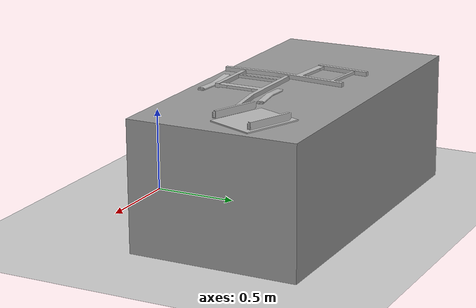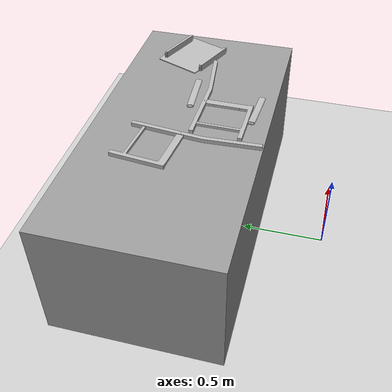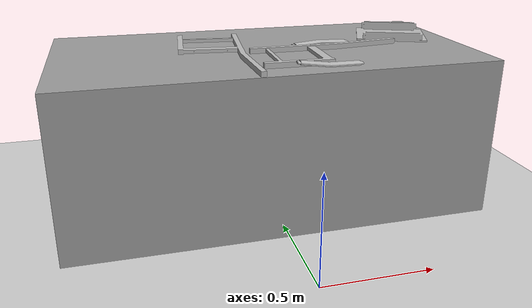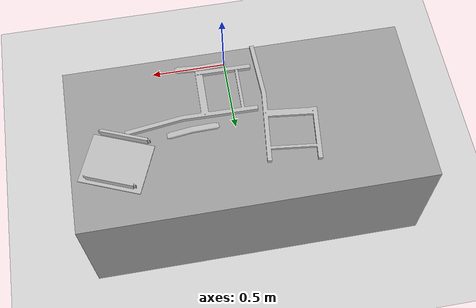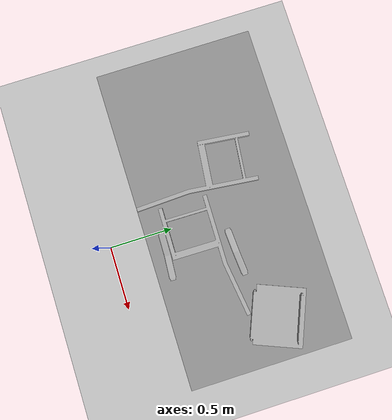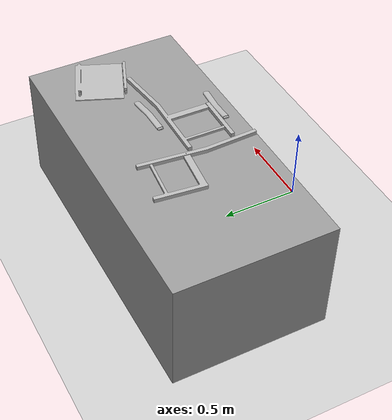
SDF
<sdf version="1.6">
 <world name="default">
  <light name="sun" type="directional">
   <pose>0 0 10 0 -0 0</pose>
   <diffuse>0.8 0.8 0.8 1</diffuse>
   <specular>0.2 0.2 0.2 1</specular>
   <attenuation>
    <range>1000</range>
    <constant>0.9</constant>
    <linear>0.01</linear>
    <quadratic>0.001</quadratic>
   </attenuation>
   <direction>-0.5 0.1 -0.9</direction>
  </light>
  <model name="ground_plane">
   <static>1</static>
   <link name="link">
    <collision name="collision">
     <geometry><plane><normal>0 0 1</normal><size>100 100</size></plane></geometry>
     <surface>
      <contact><collide_bitmask>65535</collide_bitmask></contact>
      <friction><ode><mu>100</mu><mu2>50</mu2></ode></friction>
     </surface>
    </collision>
    <visual name="visual">
     <cast_shadows>0</cast_shadows>
     <geometry><plane><normal>0 0 1</normal><size>100 100</size></plane></geometry>
     <material>
      <script><uri>file://media/materials/scripts/gazebo.material</uri><name>Gazebo/Grey</name></script>
     </material>
    </visual>
   </link>
  </model>
  <gravity>0 0 -9.8</gravity>
  <magnetic_field>6e-06 2.3e-05 -4.2e-05</magnetic_field>
  <atmosphere type="adiabatic"/>
  <physics name="default_physics" default="0" type="ode">
   <max_step_size>0.001</max_step_size>
   <real_time_factor>1</real_time_factor>
   <real_time_update_rate>1000</real_time_update_rate>
  </physics>
  <scene><ambient>0.4 0.4 0.4 1</ambient><background>0.7 0.7 0.7 1</background><shadows>1</shadows></scene>
  <audio><device>default</device></audio>
  <spherical_coordinates>
   <surface_model>EARTH_WGS84</surface_model>
   <latitude_deg>0</latitude_deg>
   <longitude_deg>0</longitude_deg>
   <elevation>0</elevation>
   <heading_deg>0</heading_deg>
  </spherical_coordinates>
  <model name="cafe_box">
   <link name="link_1">
    <inertial>
     <mass>1</mass>
     <inertia>
      <ixx>0.166667</ixx>
      <ixy>0</ixy>
      <ixz>0</ixz>
      <iyy>0.166667</iyy>
      <iyz>0</iyz>
      <izz>0.166667</izz>
     </inertia>
    </inertial>
    <visual name="visual">
     <geometry><box><size>2 1 0.8</size></box></geometry>
     <material>
      <lighting>1</lighting>
      <script><uri>file://media/materials/scripts/gazebo.material</uri><name>Gazebo/Grey</name></script>
      <shader type="vertex"><normal_map>__default__</normal_map></shader>
      <ambient>0.3 0.3 0.3 1</ambient>
      <diffuse>0.7 0.7 0.7 1</diffuse>
      <specular>0.01 0.01 0.01 1</specular>
      <emissive>0 0 0 1</emissive>
     </material>
    </visual>
    <collision name="collision">
     <geometry><box><size>2 1 0.8</size></box></geometry>
     <surface>
      <friction>
       <ode><mu>1</mu><mu2>1</mu2><fdir1>0 0 0</fdir1><slip1>0</slip1><slip2>0</slip2></ode>
       <torsional>
        <coefficient>1</coefficient>
        <patch_radius>0</patch_radius>
        <surface_radius>0</surface_radius>
        <use_patch_radius>1</use_patch_radius>
        <ode><slip>0</slip></ode>
       </torsional>
      </friction>
      <bounce><restitution_coefficient>0</restitution_coefficient><threshold>1e+06</threshold></bounce>
      <contact>
       <collide_without_contact>0</collide_without_contact>
       <collide_without_contact_bitmask>1</collide_without_contact_bitmask>
       <collide_bitmask>1</collide_bitmask>
       <ode>
        <soft_cfm>0</soft_cfm>
        <soft_erp>0.2</soft_erp>
        <kp>1e+13</kp>
        <kd>1</kd>
        <max_vel>0.01</max_vel>
        <min_depth>0</min_depth>
       </ode>
       <bullet>
        <split_impulse>1</split_impulse>
        <split_impulse_penetration_threshold>-0.01</split_impulse_penetration_threshold>
        <soft_cfm>0</soft_cfm>
        <soft_erp>0.2</soft_erp>
        <kp>1e+13</kp>
        <kd>1</kd>
       </bullet>
      </contact>
     </surface>
    </collision>
   </link>
   <static>1</static>
   <pose>0.000211 0.9 0.358622 -0.000216 2.8e-05 -1.4e-05</pose>
  </model>
  <model name="chair_ivar_part0">
   <link name="mesh_link0">
    <visual name="visual0">
     <geometry>
      <mesh><uri>model://ivar_chair/meshes/0.stl</uri><scale>0.00065 0.00065 0.00065</scale></mesh>
     </geometry>
    </visual>
    <collision name="collision0">
     <geometry>
      <mesh><uri>model://ivar_chair/meshes/0.stl</uri><scale>0.00065 0.00065 0.00065</scale></mesh>
     </geometry>
    </collision>
    <inertial>
     <inertia><ixx>1</ixx><ixy>0</ixy><ixz>0</ixz><iyy>1</iyy><iyz>0</iyz><izz>1</izz></inertia>
     <mass>1</mass>
    </inertial>
   </link>
   <pose>-0.242324 0.800054 0.771033 -0.004075 1.57058 -1.68339</pose>
  </model>
  <model name="chair_ivar_part1">
   <link name="mesh_link1">
    <visual name="visual1">
     <geometry>
      <mesh><uri>model://ivar_chair/meshes/1.stl</uri><scale>0.00065 0.00065 0.00065</scale></mesh>
     </geometry>
    </visual>
    <collision name="collision1">
     <geometry>
      <mesh><uri>model://ivar_chair/meshes/1.stl</uri><scale>0.00065 0.00065 0.00065</scale></mesh>
     </geometry>
    </collision>
    <inertial>
     <inertia><ixx>1</ixx><ixy>0</ixy><ixz>0</ixz><iyy>1</iyy><iyz>0</iyz><izz>1</izz></inertia>
     <mass>1</mass>
    </inertial>
   </link>
   <pose>0.297132 0.699882 0.77104 -1.71022 1.57058 -1.72396</pose>
  </model>
  <model name="chair_ivar_part2">
   <link name="mesh_link2">
    <visual name="visual2">
     <geometry>
      <mesh><uri>model://ivar_chair/meshes/2.stl</uri><scale>0.00065 0.00065 0.00065</scale></mesh>
     </geometry>
    </visual>
    <collision name="collision2">
     <geometry>
      <mesh><uri>model://ivar_chair/meshes/2.stl</uri><scale>0.00065 0.00065 0.00065</scale></mesh>
     </geometry>
    </collision>
    <inertial>
     <inertia><ixx>1</ixx><ixy>0</ixy><ixz>0</ixz><iyy>1</iyy><iyz>0</iyz><izz>1</izz></inertia>
     <mass>1</mass>
    </inertial>
   </link>
   <pose>0.201006 0.497984 0.771807 -1.41153 0.054853 -0.05274</pose>
  </model>
  <model name="chair_ivar_part3">
   <link name="mesh_link3">
    <visual name="visual3">
     <geometry>
      <mesh><uri>model://ivar_chair/meshes/3.stl</uri><scale>0.00065 0.00065 0.00065</scale></mesh>
     </geometry>
    </visual>
    <collision name="collision3">
     <geometry>
      <mesh><uri>model://ivar_chair/meshes/3.stl</uri><scale>0.00065 0.00065 0.00065</scale></mesh>
     </geometry>
    </collision>
    <inertial>
     <inertia><ixx>1</ixx><ixy>0</ixy><ixz>0</ixz><iyy>1</iyy><iyz>0</iyz><izz>1</izz></inertia>
     <mass>1</mass>
    </inertial>
   </link>
   <pose>0.301125 0.9002 0.772028 1.75948 4.3e-05 0.070332</pose>
  </model>
  <model name="chair_ivar_part4">
   <link name="chair_ivar_part4::mesh_link4">
    <visual name="visual4">
     <geometry>
      <mesh><uri>model://ivar_chair/meshes/4.stl</uri><scale>0.00065 0.00065 0.00065</scale></mesh>
     </geometry>
    </visual>
    <collision name="collision4">
     <geometry>
      <mesh><uri>model://ivar_chair/meshes/4.stl</uri><scale>0.00065 0.00065 0.00065</scale></mesh>
     </geometry>
    </collision>
    <inertial>
     <inertia><ixx>1</ixx><ixy>0</ixy><ixz>0</ixz><iyy>1</iyy><iyz>0</iyz><izz>1</izz></inertia>
     <mass>1</mass>
    </inertial>
   </link>
   <pose>0.740163 1.02037 0.783348 3.14144 -5.6e-05 -0.388339</pose>
  </model>
 </world>
</sdf>
